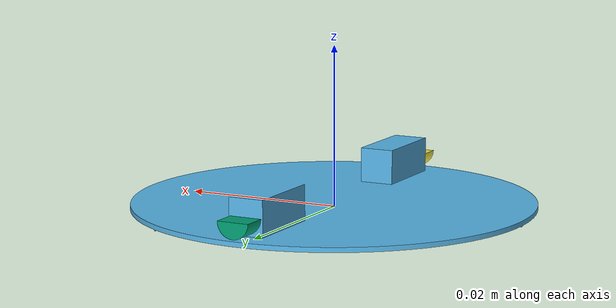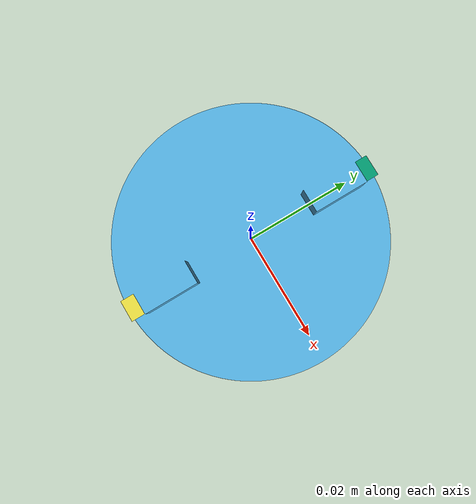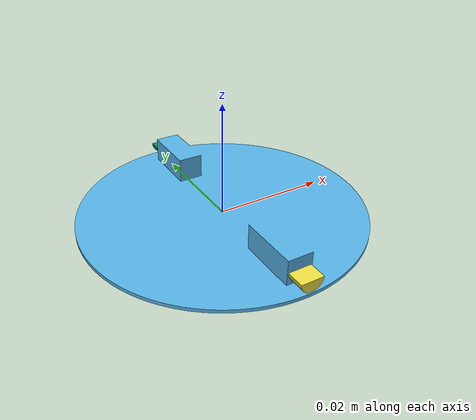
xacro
<?xml version="1.0"?>
<robot name="microrobot" xmlns:xacro="http://www.ros.org/wiki/xacro" >

    <!-- Import all Gazebo-customization elements, including Gazebo colors -->

    <!-- Robot Constants -->
    <!-- TODO: damping and friction may limit jitter -->
    <xacro:property name="motor_damping" value="0.0" />

    <xacro:property name="motor_friction" value="1e-4" />

    <xacro:property name="platform_height" value="0.0008" />

    <xacro:property name="left_eccenter_position">
        <origin xyz="0 0.022 0.003" rpy="0 0 0" />
    </xacro:property>

    <xacro:property name="right_eccenter_position">
        <origin xyz="0 -0.022 0.003" rpy="0 0 -3.14" />
    </xacro:property>

    <xacro:property name="mesh_mass_center_offset">
        <origin xyz="0 0.0015 -0.001" rpy="0 0 0" />
    </xacro:property>

    <!-- Inertial Macros -->
    <xacro:macro name="inertial_box" params="mass x y z *origin">
        <inertial>
            <xacro:insert_block name="origin"/>
            <mass value="${mass}" />
            <inertia ixx="${(1/12) * mass * (y*y+z*z)}" ixy="0.0" ixz="0.0"
                    iyy="${(1/12) * mass * (x*x+z*z)}" iyz="0.0"
                    izz="${(1/12) * mass * (x*x+y*y)}" />
        </inertial>
    </xacro:macro>

     <xacro:macro name="inertial_cylinder" params="mass length radius *origin">
        <inertial>
            <xacro:insert_block name="origin"/>
            <mass value="${mass}" />
            <inertia ixx="${(1/12) * mass * (3*radius*radius + length*length)}" ixy="0.0" ixz="0.0"
                    iyy="${(1/12) * mass * (3*radius*radius + length*length)}" iyz="0.0"
                    izz="${(1/2) * mass * (radius*radius)}" />
        </inertial>
    </xacro:macro>

    <!-- Base Link -->
    <link name="base_link">
    </link>

    <joint name="platform_joint" type="fixed">
        <parent link="base_link"></parent>
        <child link="platform_link"></child>
    </joint>

    <!-- Platform link -->
    <link name="platform_link">

        <inertial>
            <mass value="0.100003017"/>
            <inertia ixx="0.000019251"  ixy="0"  ixz="0" iyy="0.000011903"
                iyz="0" izz="0.000030834" />
        </inertial>

        <visual>
            <geometry>
                <mesh scale="0.001 0.001 0.001"
                    filename="package://microrobot/meshes/platform collision mesh v7.stl"/>
            </geometry>
        </visual>

        <collision>
            <geometry>
                <mesh scale="0.001 0.001 0.001"
                    filename="package://microrobot/meshes/platform collision mesh v7.stl"/>
            </geometry>
        </collision>
    </link>

    <!-- Left eccenter link -->
    <link name="left_eccenter_link">

        <inertial>
            <xacro:insert_block name="mesh_mass_center_offset" />
            <mass value="0.000208337"/>
            <inertia ixx="2.145e-10"  ixy="0"  ixz="0" iyy="2.666e-10" iyz="0"
                izz="3.646e-10" />
        </inertial>

        <visual>
            <geometry>
                <mesh scale="0.001 0.001 0.001"
                    filename="package://microrobot/meshes/microbot_eccenter_5d.stl"/>
            </geometry>
        </visual>

        <collision>
            <geometry>
                <mesh scale="0.001 0.001 0.001"
                    filename="package://microrobot/meshes/microbot_eccenter_5d.stl"/>
            </geometry>
        </collision>

    </link>

    <joint name="platform_to_left_eccenter_joint" type="continuous">
        <xacro:insert_block name="left_eccenter_position" />
        <parent link="platform_link"/>
        <child link="left_eccenter_link"/>
        <axis xyz="0 1 0"/>
        <dynamics damping="${motor_damping}" friction="${motor_friction}"/>
    </joint>

    <!-- Right eccenter link -->
    <link name="right_eccenter_link">

        <inertial>
            <xacro:insert_block name="mesh_mass_center_offset" />
            <mass value="0.000208337"/>
            <inertia ixx="2.145e-10"  ixy="0"  ixz="0" iyy="2.666e-10" iyz="0"
                izz="3.646e-10" />
        </inertial>

        <visual>
            <geometry>
                <mesh scale="0.001 0.001 0.001"
                    filename="package://microrobot/meshes/microbot_eccenter_5d.stl"/>
            </geometry>
        </visual>

        <collision>
            <geometry>
                <mesh scale="0.001 0.001 0.001"
                    filename="package://microrobot/meshes/microbot_eccenter_5d.stl"/>
            </geometry>
        </collision>

    </link>

    <joint name="platform_to_right_eccenter_joint" type="continuous">
        <xacro:insert_block name="right_eccenter_position" />
        <parent link="platform_link"/>
        <child link="right_eccenter_link"/>
        <axis xyz="0 1 0"/>
        <dynamics damping="${motor_damping}" friction="${motor_friction}"/>
    </joint>

</robot>
